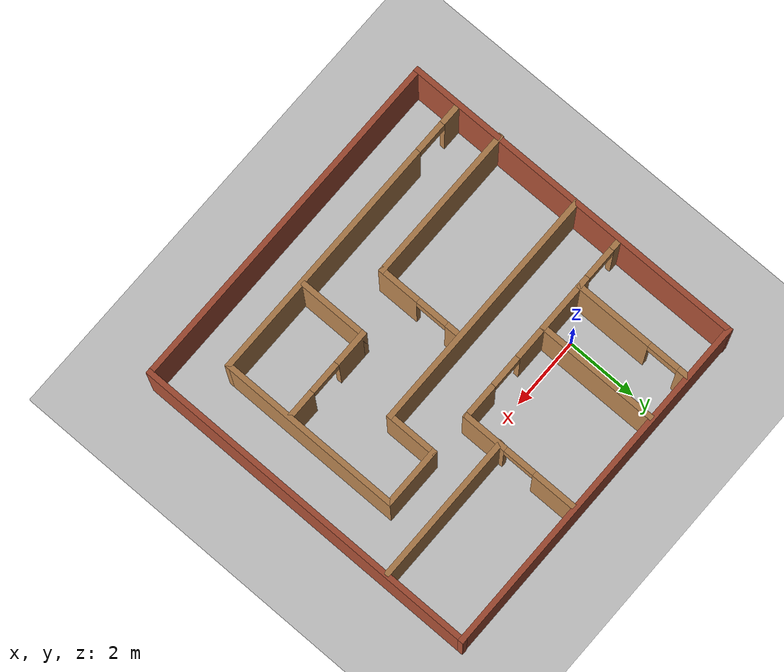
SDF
<sdf version="1.7">
 <world name="default">
  <model name="ground_plane">
   <static>1</static>
   <link name="link">
    <collision name="collision">
     <geometry><plane><normal>0 0 1</normal><size>100 100</size></plane></geometry>
     <surface><friction><ode><mu>100</mu><mu2>50</mu2></ode></friction></surface>
    </collision>
    <visual name="visual">
     <cast_shadows>0</cast_shadows>
     <geometry><plane><normal>0 0 1</normal><size>100 100</size></plane></geometry>
     <material>
      <script><uri>file://media/materials/scripts/gazebo.material</uri><name>Gazebo/Grey</name></script>
     </material>
    </visual>
   </link>
  </model>
  <light name="sun" type="directional">
   <pose>0 0 10 0 -0 0</pose>
   <diffuse>0.8 0.8 0.8 1</diffuse>
   <specular>0.2 0.2 0.2 1</specular>
   <attenuation>
    <range>1000</range>
    <constant>0.9</constant>
    <linear>0.01</linear>
    <quadratic>0.001</quadratic>
   </attenuation>
   <direction>-0.5 0.1 -0.9</direction>
   <spot><inner_angle>0</inner_angle><outer_angle>0</outer_angle><falloff>0</falloff></spot>
  </light>
  <scene><shadows>0</shadows><ambient>0.4 0.4 0.4 1</ambient><background>0.7 0.7 0.7 1</background></scene>
  <physics type="ode">
   <real_time_update_rate>1000</real_time_update_rate>
   <max_step_size>0.001</max_step_size>
   <real_time_factor>1</real_time_factor>
   <ode>
    <solver>
     <type>quick</type>
     <iters>150</iters>
     <precon_iters>0</precon_iters>
     <sor>1.4</sor>
     <use_dynamic_moi_rescaling>1</use_dynamic_moi_rescaling>
    </solver>
    <constraints>
     <cfm>1e-05</cfm>
     <erp>0.2</erp>
     <contact_max_correcting_vel>2000</contact_max_correcting_vel>
     <contact_surface_layer>0.01</contact_surface_layer>
    </constraints>
   </ode>
  </physics>
  <gravity>0 0 -9.8</gravity>
  <magnetic_field>6e-06 2.3e-05 -4.2e-05</magnetic_field>
  <atmosphere type="adiabatic"/>
  <audio><device>default</device></audio>
  <spherical_coordinates>
   <surface_model>EARTH_WGS84</surface_model>
   <latitude_deg>0</latitude_deg>
   <longitude_deg>0</longitude_deg>
   <elevation>0</elevation>
   <heading_deg>0</heading_deg>
  </spherical_coordinates>
  <model name="Arena_10m">
   <pose>4.10575 -2.04092 0 0 -0 0</pose>
   <link name="Wall_43">
    <collision name="Wall_43_Collision">
     <geometry><box><size>10.0304 0.15 2.5</size></box></geometry>
     <pose>0 0 1.25 0 -0 0</pose>
    </collision>
    <visual name="Wall_43_Visual">
     <pose>0 0 1.25 0 -0 0</pose>
     <geometry><box><size>10.0304 0.15 2.5</size></box></geometry>
     <material>
      <script><uri>file://media/materials/scripts/gazebo.material</uri><name>Gazebo/Bricks</name></script>
      <ambient>1 1 1 1</ambient>
     </material>
     <meta><layer>0</layer></meta>
    </visual>
    <pose>-6.43555 0 0 0 -0 -1.5708</pose>
   </link>
   <link name="Wall_44">
    <collision name="Wall_44_Collision">
     <geometry><box><size>10 0.15 2.5</size></box></geometry>
     <pose>0 0 1.25 0 -0 0</pose>
    </collision>
    <visual name="Wall_44_Visual">
     <pose>0 0 1.25 0 -0 0</pose>
     <geometry><box><size>10 0.15 2.5</size></box></geometry>
     <material>
      <script><uri>file://media/materials/scripts/gazebo.material</uri><name>Gazebo/Bricks</name></script>
      <ambient>1 1 1 1</ambient>
     </material>
     <meta><layer>0</layer></meta>
    </visual>
    <pose>-1.51055 -4.94021 0 0 -0 0</pose>
   </link>
   <link name="Wall_45">
    <collision name="Wall_45_Collision">
     <geometry><box><size>10.0304 0.15 2.5</size></box></geometry>
     <pose>0 0 1.25 0 -0 0</pose>
    </collision>
    <visual name="Wall_45_Visual">
     <pose>0 0 1.25 0 -0 0</pose>
     <geometry><box><size>10.0304 0.15 2.5</size></box></geometry>
     <material>
      <script><uri>file://media/materials/scripts/gazebo.material</uri><name>Gazebo/Bricks</name></script>
      <ambient>1 1 1 1</ambient>
     </material>
     <meta><layer>0</layer></meta>
    </visual>
    <pose>3.41445 0 0 0 -0 1.5708</pose>
   </link>
   <link name="Wall_46">
    <collision name="Wall_46_Collision">
     <geometry><box><size>10 0.15 2.5</size></box></geometry>
     <pose>0 0 1.25 0 -0 0</pose>
    </collision>
    <visual name="Wall_46_Visual">
     <pose>0 0 1.25 0 -0 0</pose>
     <geometry><box><size>10 0.15 2.5</size></box></geometry>
     <material>
      <script><uri>file://media/materials/scripts/gazebo.material</uri><name>Gazebo/Bricks</name></script>
      <ambient>1 1 1 1</ambient>
     </material>
     <meta><layer>0</layer></meta>
    </visual>
    <pose>-1.51055 4.925 0 0 -0 3.14159</pose>
   </link>
   <link name="Wall_49">
    <pose>-5.00511 1.51546 0 0 -0 0</pose>
    <visual name="Wall_49_Visual_0">
     <pose>-1.30285 0 1.25 0 -0 0</pose>
     <geometry><box><size>0.394294 0.15 2.5</size></box></geometry>
     <material>
      <script><uri>file://media/materials/scripts/gazebo.material</uri><name>Gazebo/Wood</name></script>
      <ambient>1 1 1 1</ambient>
     </material>
     <meta><layer>0</layer></meta>
    </visual>
    <collision name="Wall_49_Collision_0">
     <geometry><box><size>0.394294 0.15 2.5</size></box></geometry>
     <pose>-1.30285 0 1.25 0 -0 0</pose>
    </collision>
    <visual name="Wall_49_Visual_1">
     <pose>0.647147 0 1.25 0 -0 0</pose>
     <geometry><box><size>1.70571 0.15 2.5</size></box></geometry>
     <material>
      <script><uri>file://media/materials/scripts/gazebo.material</uri><name>Gazebo/Wood</name></script>
      <ambient>1 1 1 1</ambient>
     </material>
     <meta><layer>0</layer></meta>
    </visual>
    <collision name="Wall_49_Collision_1">
     <geometry><box><size>1.70571 0.15 2.5</size></box></geometry>
     <pose>0.647147 0 1.25 0 -0 0</pose>
    </collision>
    <visual name="Wall_49_Visual_2">
     <pose>-0.655706 0 2.25 0 -0 0</pose>
     <geometry><box><size>0.9 0.15 0.5</size></box></geometry>
     <material>
      <script><uri>file://media/materials/scripts/gazebo.material</uri><name>Gazebo/Wood</name></script>
      <ambient>1 1 1 1</ambient>
     </material>
     <meta><layer>0</layer></meta>
    </visual>
    <collision name="Wall_49_Collision_2">
     <geometry><box><size>0.9 0.15 0.5</size></box></geometry>
     <pose>-0.655706 0 2.25 0 -0 0</pose>
    </collision>
   </link>
   <link name="Wall_50">
    <collision name="Wall_50_Collision">
     <geometry><box><size>3.5 0.15 2.5</size></box></geometry>
     <pose>0 0 1.25 0 -0 0</pose>
    </collision>
    <visual name="Wall_50_Visual">
     <pose>0 0 1.25 0 -0 0</pose>
     <geometry><box><size>3.5 0.15 2.5</size></box></geometry>
     <material>
      <script><uri>file://media/materials/scripts/gazebo.material</uri><name>Gazebo/Wood</name></script>
      <ambient>1 1 1 1</ambient>
     </material>
     <meta><layer>0</layer></meta>
    </visual>
    <pose>-3.58011 3.19046 0 0 -0 1.5708</pose>
   </link>
   <link name="Wall_52">
    <pose>-4.91782 3.22333 0 0 -0 1.5708</pose>
    <visual name="Wall_52_Visual_0">
     <pose>-0.625755 0 1.25 0 -0 0</pose>
     <geometry><box><size>2.24849 0.15 2.5</size></box></geometry>
     <material>
      <script><uri>file://media/materials/scripts/gazebo.material</uri><name>Gazebo/Wood</name></script>
      <ambient>1 1 1 1</ambient>
     </material>
     <meta><layer>0</layer></meta>
    </visual>
    <collision name="Wall_52_Collision_0">
     <geometry><box><size>2.24849 0.15 2.5</size></box></geometry>
     <pose>-0.625755 0 1.25 0 -0 0</pose>
    </collision>
    <visual name="Wall_52_Visual_1">
     <pose>1.57424 0 1.25 0 -0 0</pose>
     <geometry><box><size>0.35151 0.15 2.5</size></box></geometry>
     <material>
      <script><uri>file://media/materials/scripts/gazebo.material</uri><name>Gazebo/Wood</name></script>
      <ambient>1 1 1 1</ambient>
     </material>
     <meta><layer>0</layer></meta>
    </visual>
    <collision name="Wall_52_Collision_1">
     <geometry><box><size>0.35151 0.15 2.5</size></box></geometry>
     <pose>1.57424 0 1.25 0 -0 0</pose>
    </collision>
    <visual name="Wall_52_Visual_2">
     <pose>0.94849 0 2.25 0 -0 0</pose>
     <geometry><box><size>0.9 0.15 0.5</size></box></geometry>
     <material>
      <script><uri>file://media/materials/scripts/gazebo.material</uri><name>Gazebo/Wood</name></script>
      <ambient>1 1 1 1</ambient>
     </material>
     <meta><layer>0</layer></meta>
    </visual>
    <collision name="Wall_52_Collision_2">
     <geometry><box><size>0.9 0.15 0.5</size></box></geometry>
     <pose>0.94849 0 2.25 0 -0 0</pose>
    </collision>
   </link>
   <link name="Wall_55">
    <collision name="Wall_55_Collision">
     <geometry><box><size>7 0.15 2.5</size></box></geometry>
     <pose>0 0 1.25 0 -0 0</pose>
    </collision>
    <visual name="Wall_55_Visual">
     <pose>0 0 1.25 0 -0 0</pose>
     <geometry><box><size>7 0.15 2.5</size></box></geometry>
     <material>
      <script><uri>file://media/materials/scripts/gazebo.material</uri><name>Gazebo/Wood</name></script>
      <ambient>1 1 1 1</ambient>
     </material>
     <meta><layer>0</layer></meta>
    </visual>
    <pose>-2.97223 0.128097 0 0 -0 0</pose>
   </link>
   <link name="Wall_57">
    <pose>-2.15511 1.51546 0 0 -0 0</pose>
    <visual name="Wall_57_Visual_0">
     <pose>-0.979609 0 1.25 0 -0 0</pose>
     <geometry><box><size>1.04078 0.15 2.5</size></box></geometry>
     <material>
      <script><uri>file://media/materials/scripts/gazebo.material</uri><name>Gazebo/Wood</name></script>
      <ambient>1 1 1 1</ambient>
     </material>
     <meta><layer>0</layer></meta>
    </visual>
    <collision name="Wall_57_Collision_0">
     <geometry><box><size>1.04078 0.15 2.5</size></box></geometry>
     <pose>-0.979609 0 1.25 0 -0 0</pose>
    </collision>
    <visual name="Wall_57_Visual_1">
     <pose>0.970391 0 1.25 0 -0 0</pose>
     <geometry><box><size>1.05922 0.15 2.5</size></box></geometry>
     <material>
      <script><uri>file://media/materials/scripts/gazebo.material</uri><name>Gazebo/Wood</name></script>
      <ambient>1 1 1 1</ambient>
     </material>
     <meta><layer>0</layer></meta>
    </visual>
    <collision name="Wall_57_Collision_1">
     <geometry><box><size>1.05922 0.15 2.5</size></box></geometry>
     <pose>0.970391 0 1.25 0 -0 0</pose>
    </collision>
    <visual name="Wall_57_Visual_2">
     <pose>-0.009218 0 2.25 0 -0 0</pose>
     <geometry><box><size>0.9 0.15 0.5</size></box></geometry>
     <material>
      <script><uri>file://media/materials/scripts/gazebo.material</uri><name>Gazebo/Wood</name></script>
      <ambient>1 1 1 1</ambient>
     </material>
     <meta><layer>0</layer></meta>
    </visual>
    <collision name="Wall_57_Collision_2">
     <geometry><box><size>0.9 0.15 0.5</size></box></geometry>
     <pose>-0.009218 0 2.25 0 -0 0</pose>
    </collision>
   </link>
   <link name="Wall_58">
    <pose>-0.730105 3.19046 0 0 -0 1.5708</pose>
    <visual name="Wall_58_Visual_0">
     <pose>-1.09818 0 1.25 0 -0 0</pose>
     <geometry><box><size>1.30363 0.15 2.5</size></box></geometry>
     <material>
      <script><uri>file://media/materials/scripts/gazebo.material</uri><name>Gazebo/Wood</name></script>
      <ambient>1 1 1 1</ambient>
     </material>
     <meta><layer>0</layer></meta>
    </visual>
    <collision name="Wall_58_Collision_0">
     <geometry><box><size>1.30363 0.15 2.5</size></box></geometry>
     <pose>-1.09818 0 1.25 0 -0 0</pose>
    </collision>
    <visual name="Wall_58_Visual_1">
     <pose>1.10182 0 1.25 0 -0 0</pose>
     <geometry><box><size>1.29637 0.15 2.5</size></box></geometry>
     <material>
      <script><uri>file://media/materials/scripts/gazebo.material</uri><name>Gazebo/Wood</name></script>
      <ambient>1 1 1 1</ambient>
     </material>
     <meta><layer>0</layer></meta>
    </visual>
    <collision name="Wall_58_Collision_1">
     <geometry><box><size>1.29637 0.15 2.5</size></box></geometry>
     <pose>1.10182 0 1.25 0 -0 0</pose>
    </collision>
    <visual name="Wall_58_Visual_2">
     <pose>0.003633 0 2.25 0 -0 0</pose>
     <geometry><box><size>0.9 0.15 0.5</size></box></geometry>
     <material>
      <script><uri>file://media/materials/scripts/gazebo.material</uri><name>Gazebo/Wood</name></script>
      <ambient>1 1 1 1</ambient>
     </material>
     <meta><layer>0</layer></meta>
    </visual>
    <collision name="Wall_58_Collision_2">
     <geometry><box><size>0.9 0.15 0.5</size></box></geometry>
     <pose>0.003633 0 2.25 0 -0 0</pose>
    </collision>
   </link>
   <link name="Wall_60">
    <collision name="Wall_60_Collision">
     <geometry><box><size>4.25 0.15 2.5</size></box></geometry>
     <pose>0 0 1.25 0 -0 0</pose>
    </collision>
    <visual name="Wall_60_Visual">
     <pose>0 0 1.25 0 -0 0</pose>
     <geometry><box><size>4.25 0.15 2.5</size></box></geometry>
     <material>
      <script><uri>file://media/materials/scripts/gazebo.material</uri><name>Gazebo/Wood</name></script>
      <ambient>1 1 1 1</ambient>
     </material>
     <meta><layer>0</layer></meta>
    </visual>
    <pose>1.30568 2.55409 0 0 -0 0</pose>
   </link>
   <link name="Wall_62">
    <collision name="Wall_62_Collision">
     <geometry><box><size>1.5 0.15 2.5</size></box></geometry>
     <pose>0 0 1.25 0 -0 0</pose>
    </collision>
    <visual name="Wall_62_Visual">
     <pose>0 0 1.25 0 -0 0</pose>
     <geometry><box><size>1.5 0.15 2.5</size></box></geometry>
     <material>
      <script><uri>file://media/materials/scripts/gazebo.material</uri><name>Gazebo/Wood</name></script>
      <ambient>1 1 1 1</ambient>
     </material>
     <meta><layer>0</layer></meta>
    </visual>
    <pose>0.452771 0.803097 0 0 -0 1.5708</pose>
   </link>
   <link name="Wall_63">
    <collision name="Wall_63_Collision">
     <geometry><box><size>1.75 0.15 2.5</size></box></geometry>
     <pose>0 0 1.25 0 -0 0</pose>
    </collision>
    <visual name="Wall_63_Visual">
     <pose>0 0 1.25 0 -0 0</pose>
     <geometry><box><size>1.75 0.15 2.5</size></box></geometry>
     <material>
      <script><uri>file://media/materials/scripts/gazebo.material</uri><name>Gazebo/Wood</name></script>
      <ambient>1 1 1 1</ambient>
     </material>
     <meta><layer>0</layer></meta>
    </visual>
    <pose>1.25277 1.4781 0 0 -0 0</pose>
   </link>
   <link name="Wall_64">
    <collision name="Wall_64_Collision">
     <geometry><box><size>5.25 0.15 2.5</size></box></geometry>
     <pose>0 0 1.25 0 -0 0</pose>
    </collision>
    <visual name="Wall_64_Visual">
     <pose>0 0 1.25 0 -0 0</pose>
     <geometry><box><size>5.25 0.15 2.5</size></box></geometry>
     <material>
      <script><uri>file://media/materials/scripts/gazebo.material</uri><name>Gazebo/Wood</name></script>
      <ambient>1 1 1 1</ambient>
     </material>
     <meta><layer>0</layer></meta>
    </visual>
    <pose>2.05277 -1.0719 0 0 -0 -1.5708</pose>
   </link>
   <link name="Wall_65">
    <pose>-2.12223 -3.6219 0 0 -0 3.14159</pose>
    <visual name="Wall_65_Visual_0">
     <pose>-0.728953 0 1.25 0 -0 0</pose>
     <geometry><box><size>7.04209 0.15 2.5</size></box></geometry>
     <material>
      <script><uri>file://media/materials/scripts/gazebo.material</uri><name>Gazebo/Wood</name></script>
      <ambient>1 1 1 1</ambient>
     </material>
     <meta><layer>0</layer></meta>
    </visual>
    <collision name="Wall_65_Collision_0">
     <geometry><box><size>7.04209 0.15 2.5</size></box></geometry>
     <pose>-0.728953 0 1.25 0 -0 0</pose>
    </collision>
    <visual name="Wall_65_Visual_1">
     <pose>3.97105 0 1.25 0 -0 0</pose>
     <geometry><box><size>0.557906 0.15 2.5</size></box></geometry>
     <material>
      <script><uri>file://media/materials/scripts/gazebo.material</uri><name>Gazebo/Wood</name></script>
      <ambient>1 1 1 1</ambient>
     </material>
     <meta><layer>0</layer></meta>
    </visual>
    <collision name="Wall_65_Collision_1">
     <geometry><box><size>0.557906 0.15 2.5</size></box></geometry>
     <pose>3.97105 0 1.25 0 -0 0</pose>
    </collision>
    <visual name="Wall_65_Visual_2">
     <pose>3.24209 0 2.25 0 -0 0</pose>
     <geometry><box><size>0.9 0.15 0.5</size></box></geometry>
     <material>
      <script><uri>file://media/materials/scripts/gazebo.material</uri><name>Gazebo/Wood</name></script>
      <ambient>1 1 1 1</ambient>
     </material>
     <meta><layer>0</layer></meta>
    </visual>
    <collision name="Wall_65_Collision_2">
     <geometry><box><size>0.9 0.15 0.5</size></box></geometry>
     <pose>3.24209 0 2.25 0 -0 0</pose>
    </collision>
   </link>
   <link name="Wall_68">
    <collision name="Wall_68_Collision">
     <geometry><box><size>4.5 0.15 2.5</size></box></geometry>
     <pose>0 0 1.25 0 -0 0</pose>
    </collision>
    <visual name="Wall_68_Visual">
     <pose>0 0 1.25 0 -0 0</pose>
     <geometry><box><size>4.5 0.15 2.5</size></box></geometry>
     <material>
      <script><uri>file://media/materials/scripts/gazebo.material</uri><name>Gazebo/Wood</name></script>
      <ambient>1 1 1 1</ambient>
     </material>
     <meta><layer>0</layer></meta>
    </visual>
    <pose>-4.28932 -2.34591 0 0 -0 0</pose>
   </link>
   <link name="Wall_69">
    <pose>-2.11432 -1.17091 0 0 -0 1.5708</pose>
    <visual name="Wall_69_Visual_0">
     <pose>-0.6425 0 1.25 0 -0 0</pose>
     <geometry><box><size>1.215 0.15 2.5</size></box></geometry>
     <material>
      <script><uri>file://media/materials/scripts/gazebo.material</uri><name>Gazebo/Wood</name></script>
      <ambient>1 1 1 1</ambient>
     </material>
     <meta><layer>0</layer></meta>
    </visual>
    <collision name="Wall_69_Collision_0">
     <geometry><box><size>1.215 0.15 2.5</size></box></geometry>
     <pose>-0.6425 0 1.25 0 -0 0</pose>
    </collision>
    <visual name="Wall_69_Visual_1">
     <pose>1.0575 0 1.25 0 -0 0</pose>
     <geometry><box><size>0.385 0.15 2.5</size></box></geometry>
     <material>
      <script><uri>file://media/materials/scripts/gazebo.material</uri><name>Gazebo/Wood</name></script>
      <ambient>1 1 1 1</ambient>
     </material>
     <meta><layer>0</layer></meta>
    </visual>
    <collision name="Wall_69_Collision_1">
     <geometry><box><size>0.385 0.15 2.5</size></box></geometry>
     <pose>1.0575 0 1.25 0 -0 0</pose>
    </collision>
    <visual name="Wall_69_Visual_2">
     <pose>0.415 0 2.25 0 -0 0</pose>
     <geometry><box><size>0.9 0.15 0.5</size></box></geometry>
     <material>
      <script><uri>file://media/materials/scripts/gazebo.material</uri><name>Gazebo/Wood</name></script>
      <ambient>1 1 1 1</ambient>
     </material>
     <meta><layer>0</layer></meta>
    </visual>
    <collision name="Wall_69_Collision_2">
     <geometry><box><size>0.9 0.15 0.5</size></box></geometry>
     <pose>0.415 0 2.25 0 -0 0</pose>
    </collision>
   </link>
   <link name="Wall_71">
    <collision name="Wall_71_Collision">
     <geometry><box><size>2 0.15 2.5</size></box></geometry>
     <pose>0 0 1.25 0 -0 0</pose>
    </collision>
    <visual name="Wall_71_Visual">
     <pose>0 0 1.25 0 -0 0</pose>
     <geometry><box><size>2 0.15 2.5</size></box></geometry>
     <material>
      <script><uri>file://media/materials/scripts/gazebo.material</uri><name>Gazebo/Wood</name></script>
      <ambient>1 1 1 1</ambient>
     </material>
     <meta><layer>0</layer></meta>
    </visual>
    <pose>-0.624324 -2.61091 0 0 -0 1.5708</pose>
   </link>
   <link name="Wall_72">
    <pose>0.675676 -1.68591 0 0 -0 0</pose>
    <visual name="Wall_72_Visual_0">
     <pose>-0.8575 0 1.25 0 -0 0</pose>
     <geometry><box><size>1.035 0.15 2.5</size></box></geometry>
     <material>
      <script><uri>file://media/materials/scripts/gazebo.material</uri><name>Gazebo/Wood</name></script>
      <ambient>1 1 1 1</ambient>
     </material>
     <meta><layer>0</layer></meta>
    </visual>
    <collision name="Wall_72_Collision_0">
     <geometry><box><size>1.035 0.15 2.5</size></box></geometry>
     <pose>-0.8575 0 1.25 0 -0 0</pose>
    </collision>
    <visual name="Wall_72_Visual_1">
     <pose>0.9675 0 1.25 0 -0 0</pose>
     <geometry><box><size>0.815 0.15 2.5</size></box></geometry>
     <material>
      <script><uri>file://media/materials/scripts/gazebo.material</uri><name>Gazebo/Wood</name></script>
      <ambient>1 1 1 1</ambient>
     </material>
     <meta><layer>0</layer></meta>
    </visual>
    <collision name="Wall_72_Collision_1">
     <geometry><box><size>0.815 0.15 2.5</size></box></geometry>
     <pose>0.9675 0 1.25 0 -0 0</pose>
    </collision>
    <visual name="Wall_72_Visual_2">
     <pose>0.11 0 2.25 0 -0 0</pose>
     <geometry><box><size>0.9 0.15 0.5</size></box></geometry>
     <material>
      <script><uri>file://media/materials/scripts/gazebo.material</uri><name>Gazebo/Wood</name></script>
      <ambient>1 1 1 1</ambient>
     </material>
     <meta><layer>0</layer></meta>
    </visual>
    <collision name="Wall_72_Collision_2">
     <geometry><box><size>0.9 0.15 0.5</size></box></geometry>
     <pose>0.11 0 2.25 0 -0 0</pose>
    </collision>
   </link>
   <static>1</static>
  </model>
 </world>
</sdf>
